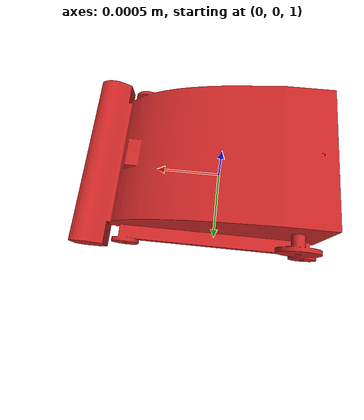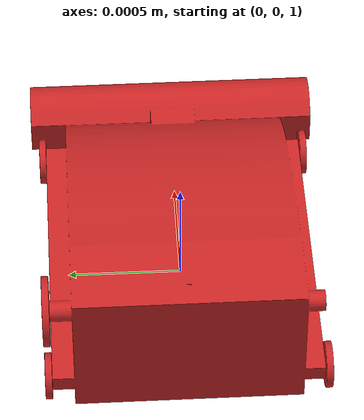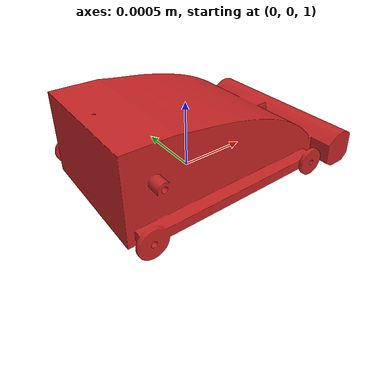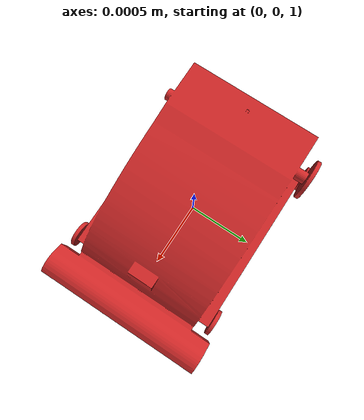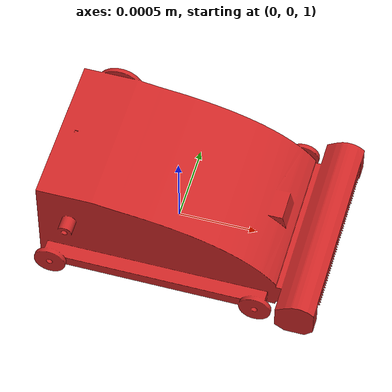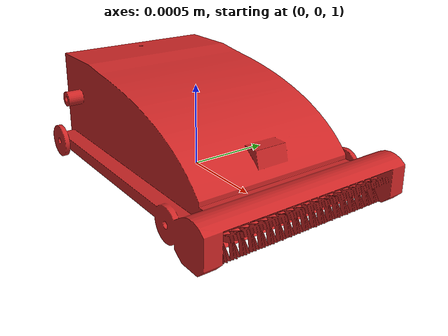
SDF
<?xml version="1.0" ?>
<sdf version="1.6">
  <world name="default">
    <include><uri>model://sun</uri></include>
    <include><uri>model://ground_plane</uri></include>

    <model name="test_mesh_model">
      <pose>0 0 1 0 0 0</pose> <static>true</static>
      <link name="link">
        <visual name="visual">
          <geometry>
            <mesh>
              <uri>file://~/ros2_ws/src/mower_bot_description/meshes/Car2.dae</uri>

              <scale>0.001 0.001 0.001</scale>
            </mesh>
          </geometry>
          <material>
            <script>
              <uri>file://media/materials/scripts/gazebo.material</uri>
              <name>Gazebo/Red</name>
            </script>
          </material>
        </visual>
      </link>
    </model>
  </world>
</sdf>
